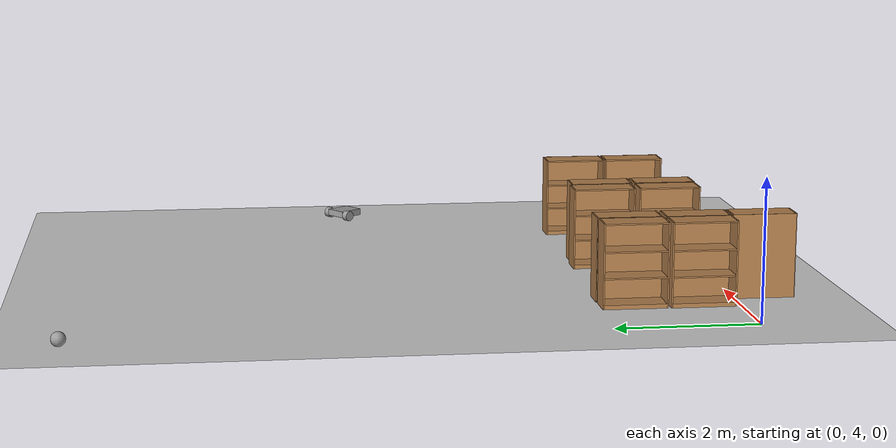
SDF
<sdf version="1.6">
 <world name="default">
  <model name="ground_plane">
   <static>1</static>
   <link name="link">
    <collision name="collision">
     <geometry><plane><normal>0 0 1</normal><size>100 100</size></plane></geometry>
     <surface>
      <contact><collide_bitmask>65535</collide_bitmask></contact>
      <friction><ode><mu>100</mu><mu2>50</mu2></ode></friction>
     </surface>
    </collision>
    <visual name="visual">
     <cast_shadows>0</cast_shadows>
     <geometry><plane><normal>0 0 1</normal><size>100 100</size></plane></geometry>
     <material>
      <script><uri>file://media/materials/scripts/gazebo.material</uri><name>Gazebo/Grey</name></script>
     </material>
    </visual>
   </link>
  </model>
  <model name="CasterWheelRobot_0">
   <link name="link_2">
    <pose>0.03 0 0.025 0 -0 0</pose>
    <inertial>
     <mass>0.0155432</mass>
     <inertia>
      <ixx>0.0001924</ixx>
      <ixy>0</ixy>
      <ixz>0</ixz>
      <iyy>0.0002189</iyy>
      <iyz>0</iyz>
      <izz>0.00038243</izz>
     </inertia>
    </inertial>
    <visual name="visual">
     <geometry><box><size>0.4 0.35 0.1</size></box></geometry>
     <material>
      <lighting>1</lighting>
      <script><uri>file://media/materials/scripts/gazebo.material</uri><name>Gazebo/Grey</name></script>
      <shader type="pixel"><normal_map>__default__</normal_map></shader>
      <ambient>0.3 0.3 0.3 1</ambient>
      <diffuse>0.7 0.7 0.7 1</diffuse>
      <specular>0.01 0.01 0.01 1</specular>
      <emissive>0 0 0 1</emissive>
     </material>
    </visual>
    <collision name="collision">
     <geometry><box><size>0.4 0.35 0.1</size></box></geometry>
     <surface>
      <friction>
       <ode><mu>1</mu><mu2>1</mu2><fdir1>0 0 0</fdir1><slip1>0</slip1><slip2>0</slip2></ode>
       <torsional>
        <coefficient>1</coefficient>
        <patch_radius>0</patch_radius>
        <surface_radius>0</surface_radius>
        <use_patch_radius>1</use_patch_radius>
        <ode><slip>0</slip></ode>
       </torsional>
      </friction>
      <bounce><restitution_coefficient>0</restitution_coefficient><threshold>1e+06</threshold></bounce>
      <contact>
       <collide_without_contact>0</collide_without_contact>
       <collide_without_contact_bitmask>1</collide_without_contact_bitmask>
       <collide_bitmask>1</collide_bitmask>
       <ode>
        <soft_cfm>0</soft_cfm>
        <soft_erp>0.2</soft_erp>
        <kp>1e+13</kp>
        <kd>1</kd>
        <max_vel>0.01</max_vel>
        <min_depth>0</min_depth>
       </ode>
       <bullet>
        <split_impulse>1</split_impulse>
        <split_impulse_penetration_threshold>-0.01</split_impulse_penetration_threshold>
        <soft_cfm>0</soft_cfm>
        <soft_erp>0.2</soft_erp>
        <kp>1e+13</kp>
        <kd>1</kd>
       </bullet>
      </contact>
     </surface>
    </collision>
   </link>
   <link name="link_3">
    <pose>-0.09 -0.225013 0.005 1.5707 -0 0</pose>
    <inertial>
     <mass>1</mass>
     <inertia><ixx>0.145833</ixx><ixy>0</ixy><ixz>0</ixz><iyy>0.145833</iyy><iyz>0</iyz><izz>0.125</izz></inertia>
    </inertial>
    <visual name="visual">
     <geometry><cylinder><radius>0.08</radius><length>0.1</length></cylinder></geometry>
     <material>
      <lighting>1</lighting>
      <script><uri>file://media/materials/scripts/gazebo.material</uri><name>Gazebo/Grey</name></script>
      <shader type="pixel"><normal_map>__default__</normal_map></shader>
      <ambient>0.3 0.3 0.3 1</ambient>
      <diffuse>0.7 0.7 0.7 1</diffuse>
      <specular>0.01 0.01 0.01 1</specular>
      <emissive>0 0 0 1</emissive>
     </material>
    </visual>
    <collision name="collision">
     <geometry><cylinder><radius>0.08</radius><length>0.1</length></cylinder></geometry>
     <surface>
      <friction>
       <ode><mu>1</mu><mu2>1</mu2><fdir1>0 0 0</fdir1><slip1>0</slip1><slip2>0</slip2></ode>
       <torsional>
        <coefficient>1</coefficient>
        <patch_radius>0</patch_radius>
        <surface_radius>0</surface_radius>
        <use_patch_radius>1</use_patch_radius>
        <ode><slip>0</slip></ode>
       </torsional>
      </friction>
      <bounce><restitution_coefficient>0</restitution_coefficient><threshold>1e+06</threshold></bounce>
      <contact>
       <collide_without_contact>0</collide_without_contact>
       <collide_without_contact_bitmask>1</collide_without_contact_bitmask>
       <collide_bitmask>1</collide_bitmask>
       <ode>
        <soft_cfm>0</soft_cfm>
        <soft_erp>0.2</soft_erp>
        <kp>1e+13</kp>
        <kd>1</kd>
        <max_vel>0.01</max_vel>
        <min_depth>0</min_depth>
       </ode>
       <bullet>
        <split_impulse>1</split_impulse>
        <split_impulse_penetration_threshold>-0.01</split_impulse_penetration_threshold>
        <soft_cfm>0</soft_cfm>
        <soft_erp>0.2</soft_erp>
        <kp>1e+13</kp>
        <kd>1</kd>
       </bullet>
      </contact>
     </surface>
    </collision>
   </link>
   <link name="link_3_clone">
    <pose>-0.09 0.225008 0.005 -1.5707 0 0</pose>
    <inertial>
     <mass>1</mass>
     <inertia><ixx>0.145833</ixx><ixy>0</ixy><ixz>0</ixz><iyy>0.145833</iyy><iyz>0</iyz><izz>0.125</izz></inertia>
    </inertial>
    <visual name="visual">
     <geometry><cylinder><radius>0.08</radius><length>0.1</length></cylinder></geometry>
     <material>
      <lighting>1</lighting>
      <script><uri>file://media/materials/scripts/gazebo.material</uri><name>Gazebo/Grey</name></script>
      <shader type="pixel"><normal_map>__default__</normal_map></shader>
      <ambient>0.3 0.3 0.3 1</ambient>
      <diffuse>0.7 0.7 0.7 1</diffuse>
      <specular>0.01 0.01 0.01 1</specular>
      <emissive>0 0 0 1</emissive>
     </material>
    </visual>
    <collision name="collision">
     <geometry><cylinder><radius>0.08</radius><length>0.1</length></cylinder></geometry>
     <surface>
      <friction>
       <ode><mu>1</mu><mu2>1</mu2><fdir1>0 0 0</fdir1><slip1>0</slip1><slip2>0</slip2></ode>
       <torsional>
        <coefficient>1</coefficient>
        <patch_radius>0</patch_radius>
        <surface_radius>0</surface_radius>
        <use_patch_radius>1</use_patch_radius>
        <ode><slip>0</slip></ode>
       </torsional>
      </friction>
      <bounce><restitution_coefficient>0</restitution_coefficient><threshold>1e+06</threshold></bounce>
      <contact>
       <collide_without_contact>0</collide_without_contact>
       <collide_without_contact_bitmask>1</collide_without_contact_bitmask>
       <collide_bitmask>1</collide_bitmask>
       <ode>
        <soft_cfm>0</soft_cfm>
        <soft_erp>0.2</soft_erp>
        <kp>1e+13</kp>
        <kd>1</kd>
        <max_vel>0.01</max_vel>
        <min_depth>0</min_depth>
       </ode>
       <bullet>
        <split_impulse>1</split_impulse>
        <split_impulse_penetration_threshold>-0.01</split_impulse_penetration_threshold>
        <soft_cfm>0</soft_cfm>
        <soft_erp>0.2</soft_erp>
        <kp>1e+13</kp>
        <kd>1</kd>
       </bullet>
      </contact>
     </surface>
    </collision>
   </link>
   <link name="link_4">
    <pose>0.15 0 -0.035 0 -0 0</pose>
    <inertial>
     <mass>0.00336129</mass>
     <inertia>
      <ixx>7.54e-06</ixx>
      <ixy>0</ixy>
      <ixz>0</ixz>
      <iyy>7.54e-06</iyy>
      <iyz>0</iyz>
      <izz>7.54e-06</izz>
     </inertia>
    </inertial>
    <visual name="visual">
     <geometry><sphere><radius>0.04</radius></sphere></geometry>
     <material>
      <lighting>1</lighting>
      <script><uri>file://media/materials/scripts/gazebo.material</uri><name>Gazebo/Grey</name></script>
      <shader type="pixel"><normal_map>__default__</normal_map></shader>
      <ambient>0.3 0.3 0.3 1</ambient>
      <diffuse>0.7 0.7 0.7 1</diffuse>
      <specular>0.01 0.01 0.01 1</specular>
      <emissive>0 0 0 1</emissive>
     </material>
    </visual>
    <collision name="collision">
     <geometry><sphere><radius>0.04</radius></sphere></geometry>
     <surface>
      <friction>
       <ode><mu>1</mu><mu2>1</mu2><fdir1>0 0 0</fdir1><slip1>0</slip1><slip2>0</slip2></ode>
       <torsional>
        <coefficient>1</coefficient>
        <patch_radius>0</patch_radius>
        <surface_radius>0</surface_radius>
        <use_patch_radius>1</use_patch_radius>
        <ode><slip>0</slip></ode>
       </torsional>
      </friction>
      <bounce><restitution_coefficient>0</restitution_coefficient><threshold>1e+06</threshold></bounce>
      <contact>
       <collide_without_contact>0</collide_without_contact>
       <collide_without_contact_bitmask>1</collide_without_contact_bitmask>
       <collide_bitmask>1</collide_bitmask>
       <ode>
        <soft_cfm>0</soft_cfm>
        <soft_erp>0.2</soft_erp>
        <kp>1e+13</kp>
        <kd>1</kd>
        <max_vel>0.01</max_vel>
        <min_depth>0</min_depth>
       </ode>
       <bullet>
        <split_impulse>1</split_impulse>
        <split_impulse_penetration_threshold>-0.01</split_impulse_penetration_threshold>
        <soft_cfm>0</soft_cfm>
        <soft_erp>0.2</soft_erp>
        <kp>1e+13</kp>
        <kd>1</kd>
       </bullet>
      </contact>
     </surface>
    </collision>
   </link>
   <joint name="link_2_JOINT_10" type="ball">
    <parent>link_2</parent>
    <child>link_4</child>
    <physics>
     <ode><limit><cfm>0</cfm><erp>0.2</erp></limit><suspension><cfm>0</cfm><erp>0.2</erp></suspension></ode>
    </physics>
   </joint>
   <joint name="link_2_JOINT_8" type="revolute">
    <parent>link_2</parent>
    <child>link_3</child>
    <axis>
     <xyz>0 0 1</xyz>
     <use_parent_model_frame>0</use_parent_model_frame>
     <limit>
      <lower>-1.79769e+308</lower>
      <upper>1.79769e+308</upper>
      <effort>-1</effort>
      <velocity>-1</velocity>
     </limit>
     <dynamics>
      <spring_reference>0</spring_reference>
      <spring_stiffness>0</spring_stiffness>
      <damping>0</damping>
     </dynamics>
    </axis>
    <physics>
     <ode><limit><cfm>0</cfm><erp>0.2</erp></limit><suspension><cfm>0</cfm><erp>0.2</erp></suspension></ode>
    </physics>
   </joint>
   <joint name="link_2_JOINT_9" type="revolute">
    <parent>link_2</parent>
    <child>link_3_clone</child>
    <axis>
     <xyz>0 0 1</xyz>
     <use_parent_model_frame>0</use_parent_model_frame>
     <limit>
      <lower>-1.79769e+308</lower>
      <upper>1.79769e+308</upper>
      <effort>-1</effort>
      <velocity>-1</velocity>
     </limit>
     <dynamics>
      <spring_reference>0</spring_reference>
      <spring_stiffness>0</spring_stiffness>
      <damping>0</damping>
     </dynamics>
    </axis>
    <physics>
     <ode><limit><cfm>0</cfm><erp>0.2</erp></limit><suspension><cfm>0</cfm><erp>0.2</erp></suspension></ode>
    </physics>
   </joint>
   <static>0</static>
   <pose>7.68747 9.03723 0.074992 5.1e-05 -5.1e-05 -0.935048</pose>
  </model>
  <model name="bookshelf_clone_98">
   <static>1</static>
   <link name="link">
    <inertial><mass>1</mass></inertial>
    <collision name="back">
     <pose>0 0.005 0.6 0 -0 0</pose>
     <geometry><box><size>0.9 0.01 1.2</size></box></geometry>
    </collision>
    <visual name="visual1">
     <pose>0 0.005 0.6 0 -0 0</pose>
     <geometry><box><size>0.9 0.01 1.2</size></box></geometry>
     <material>
      <script><uri>file://media/materials/scripts/gazebo.material</uri><name>Gazebo/Wood</name></script>
     </material>
    </visual>
    <collision name="left_side">
     <pose>0.45 -0.195 0.6 0 -0 0</pose>
     <geometry><box><size>0.02 0.4 1.2</size></box></geometry>
    </collision>
    <visual name="visual2">
     <pose>0.45 -0.195 0.6 0 -0 0</pose>
     <geometry><box><size>0.02 0.4 1.2</size></box></geometry>
     <material>
      <script><uri>file://media/materials/scripts/gazebo.material</uri><name>Gazebo/Wood</name></script>
     </material>
    </visual>
    <collision name="right_side">
     <pose>-0.45 -0.195 0.6 0 -0 0</pose>
     <geometry><box><size>0.02 0.4 1.2</size></box></geometry>
    </collision>
    <visual name="visual3">
     <pose>-0.45 -0.195 0.6 0 -0 0</pose>
     <geometry><box><size>0.02 0.4 1.2</size></box></geometry>
     <material>
      <script><uri>file://media/materials/scripts/gazebo.material</uri><name>Gazebo/Wood</name></script>
     </material>
    </visual>
    <collision name="bottom">
     <pose>0 -0.195 0.03 0 -0 0</pose>
     <geometry><box><size>0.88 0.4 0.06</size></box></geometry>
    </collision>
    <visual name="visual4">
     <pose>0 -0.195 0.03 0 -0 0</pose>
     <geometry><box><size>0.88 0.4 0.06</size></box></geometry>
     <material>
      <script><uri>file://media/materials/scripts/gazebo.material</uri><name>Gazebo/Wood</name></script>
     </material>
    </visual>
    <collision name="top">
     <pose>0 -0.195 1.19 0 -0 0</pose>
     <geometry><box><size>0.88 0.4 0.02</size></box></geometry>
    </collision>
    <visual name="visual5">
     <pose>0 -0.195 1.19 0 -0 0</pose>
     <geometry><box><size>0.88 0.4 0.02</size></box></geometry>
     <material>
      <script><uri>file://media/materials/scripts/gazebo.material</uri><name>Gazebo/Wood</name></script>
     </material>
    </visual>
    <collision name="low_shelf">
     <pose>0 -0.195 0.43 0 -0 0</pose>
     <geometry><box><size>0.88 0.4 0.02</size></box></geometry>
    </collision>
    <visual name="visual6">
     <pose>0 -0.195 0.43 0 -0 0</pose>
     <geometry><box><size>0.88 0.4 0.02</size></box></geometry>
     <material>
      <script><uri>file://media/materials/scripts/gazebo.material</uri><name>Gazebo/Wood</name></script>
     </material>
    </visual>
    <collision name="high_shelf">
     <pose>0 -0.195 0.8 0 -0 0</pose>
     <geometry><box><size>0.88 0.4 0.02</size></box></geometry>
    </collision>
    <visual name="visual7">
     <pose>0 -0.195 0.8 0 -0 0</pose>
     <geometry><box><size>0.88 0.4 0.02</size></box></geometry>
     <material>
      <script><uri>file://media/materials/scripts/gazebo.material</uri><name>Gazebo/Wood</name></script>
     </material>
    </visual>
   </link>
   <pose>6.34995 5.42884 0 0 0 -1.57004</pose>
  </model>
  <model name="bookshelf_clone_100">
   <static>1</static>
   <link name="link">
    <inertial><mass>1</mass></inertial>
    <collision name="back">
     <pose>0 0.005 0.6 0 -0 0</pose>
     <geometry><box><size>0.9 0.01 1.2</size></box></geometry>
    </collision>
    <visual name="visual1">
     <pose>0 0.005 0.6 0 -0 0</pose>
     <geometry><box><size>0.9 0.01 1.2</size></box></geometry>
     <material>
      <script><uri>file://media/materials/scripts/gazebo.material</uri><name>Gazebo/Wood</name></script>
     </material>
    </visual>
    <collision name="left_side">
     <pose>0.45 -0.195 0.6 0 -0 0</pose>
     <geometry><box><size>0.02 0.4 1.2</size></box></geometry>
    </collision>
    <visual name="visual2">
     <pose>0.45 -0.195 0.6 0 -0 0</pose>
     <geometry><box><size>0.02 0.4 1.2</size></box></geometry>
     <material>
      <script><uri>file://media/materials/scripts/gazebo.material</uri><name>Gazebo/Wood</name></script>
     </material>
    </visual>
    <collision name="right_side">
     <pose>-0.45 -0.195 0.6 0 -0 0</pose>
     <geometry><box><size>0.02 0.4 1.2</size></box></geometry>
    </collision>
    <visual name="visual3">
     <pose>-0.45 -0.195 0.6 0 -0 0</pose>
     <geometry><box><size>0.02 0.4 1.2</size></box></geometry>
     <material>
      <script><uri>file://media/materials/scripts/gazebo.material</uri><name>Gazebo/Wood</name></script>
     </material>
    </visual>
    <collision name="bottom">
     <pose>0 -0.195 0.03 0 -0 0</pose>
     <geometry><box><size>0.88 0.4 0.06</size></box></geometry>
    </collision>
    <visual name="visual4">
     <pose>0 -0.195 0.03 0 -0 0</pose>
     <geometry><box><size>0.88 0.4 0.06</size></box></geometry>
     <material>
      <script><uri>file://media/materials/scripts/gazebo.material</uri><name>Gazebo/Wood</name></script>
     </material>
    </visual>
    <collision name="top">
     <pose>0 -0.195 1.19 0 -0 0</pose>
     <geometry><box><size>0.88 0.4 0.02</size></box></geometry>
    </collision>
    <visual name="visual5">
     <pose>0 -0.195 1.19 0 -0 0</pose>
     <geometry><box><size>0.88 0.4 0.02</size></box></geometry>
     <material>
      <script><uri>file://media/materials/scripts/gazebo.material</uri><name>Gazebo/Wood</name></script>
     </material>
    </visual>
    <collision name="low_shelf">
     <pose>0 -0.195 0.43 0 -0 0</pose>
     <geometry><box><size>0.88 0.4 0.02</size></box></geometry>
    </collision>
    <visual name="visual6">
     <pose>0 -0.195 0.43 0 -0 0</pose>
     <geometry><box><size>0.88 0.4 0.02</size></box></geometry>
     <material>
      <script><uri>file://media/materials/scripts/gazebo.material</uri><name>Gazebo/Wood</name></script>
     </material>
    </visual>
    <collision name="high_shelf">
     <pose>0 -0.195 0.8 0 -0 0</pose>
     <geometry><box><size>0.88 0.4 0.02</size></box></geometry>
    </collision>
    <visual name="visual7">
     <pose>0 -0.195 0.8 0 -0 0</pose>
     <geometry><box><size>0.88 0.4 0.02</size></box></geometry>
     <material>
      <script><uri>file://media/materials/scripts/gazebo.material</uri><name>Gazebo/Wood</name></script>
     </material>
    </visual>
   </link>
   <pose>1.40973 5.49185 0 0 0 -1.57004</pose>
  </model>
  <model name="bookshelf_clone_101">
   <static>1</static>
   <link name="link">
    <inertial><mass>1</mass></inertial>
    <collision name="back">
     <pose>0 0.005 0.6 0 -0 0</pose>
     <geometry><box><size>0.9 0.01 1.2</size></box></geometry>
    </collision>
    <visual name="visual1">
     <pose>0 0.005 0.6 0 -0 0</pose>
     <geometry><box><size>0.9 0.01 1.2</size></box></geometry>
     <material>
      <script><uri>file://media/materials/scripts/gazebo.material</uri><name>Gazebo/Wood</name></script>
     </material>
    </visual>
    <collision name="left_side">
     <pose>0.45 -0.195 0.6 0 -0 0</pose>
     <geometry><box><size>0.02 0.4 1.2</size></box></geometry>
    </collision>
    <visual name="visual2">
     <pose>0.45 -0.195 0.6 0 -0 0</pose>
     <geometry><box><size>0.02 0.4 1.2</size></box></geometry>
     <material>
      <script><uri>file://media/materials/scripts/gazebo.material</uri><name>Gazebo/Wood</name></script>
     </material>
    </visual>
    <collision name="right_side">
     <pose>-0.45 -0.195 0.6 0 -0 0</pose>
     <geometry><box><size>0.02 0.4 1.2</size></box></geometry>
    </collision>
    <visual name="visual3">
     <pose>-0.45 -0.195 0.6 0 -0 0</pose>
     <geometry><box><size>0.02 0.4 1.2</size></box></geometry>
     <material>
      <script><uri>file://media/materials/scripts/gazebo.material</uri><name>Gazebo/Wood</name></script>
     </material>
    </visual>
    <collision name="bottom">
     <pose>0 -0.195 0.03 0 -0 0</pose>
     <geometry><box><size>0.88 0.4 0.06</size></box></geometry>
    </collision>
    <visual name="visual4">
     <pose>0 -0.195 0.03 0 -0 0</pose>
     <geometry><box><size>0.88 0.4 0.06</size></box></geometry>
     <material>
      <script><uri>file://media/materials/scripts/gazebo.material</uri><name>Gazebo/Wood</name></script>
     </material>
    </visual>
    <collision name="top">
     <pose>0 -0.195 1.19 0 -0 0</pose>
     <geometry><box><size>0.88 0.4 0.02</size></box></geometry>
    </collision>
    <visual name="visual5">
     <pose>0 -0.195 1.19 0 -0 0</pose>
     <geometry><box><size>0.88 0.4 0.02</size></box></geometry>
     <material>
      <script><uri>file://media/materials/scripts/gazebo.material</uri><name>Gazebo/Wood</name></script>
     </material>
    </visual>
    <collision name="low_shelf">
     <pose>0 -0.195 0.43 0 -0 0</pose>
     <geometry><box><size>0.88 0.4 0.02</size></box></geometry>
    </collision>
    <visual name="visual6">
     <pose>0 -0.195 0.43 0 -0 0</pose>
     <geometry><box><size>0.88 0.4 0.02</size></box></geometry>
     <material>
      <script><uri>file://media/materials/scripts/gazebo.material</uri><name>Gazebo/Wood</name></script>
     </material>
    </visual>
    <collision name="high_shelf">
     <pose>0 -0.195 0.8 0 -0 0</pose>
     <geometry><box><size>0.88 0.4 0.02</size></box></geometry>
    </collision>
    <visual name="visual7">
     <pose>0 -0.195 0.8 0 -0 0</pose>
     <geometry><box><size>0.88 0.4 0.02</size></box></geometry>
     <material>
      <script><uri>file://media/materials/scripts/gazebo.material</uri><name>Gazebo/Wood</name></script>
     </material>
    </visual>
   </link>
   <pose>1.39867 4.53399 0 0 0 -1.57004</pose>
  </model>
  <model name="bookshelf_clone_108">
   <static>1</static>
   <link name="link">
    <inertial><mass>1</mass></inertial>
    <collision name="back">
     <pose>0 0.005 0.6 0 -0 0</pose>
     <geometry><box><size>0.9 0.01 1.2</size></box></geometry>
    </collision>
    <visual name="visual1">
     <pose>0 0.005 0.6 0 -0 0</pose>
     <geometry><box><size>0.9 0.01 1.2</size></box></geometry>
     <material>
      <script><uri>file://media/materials/scripts/gazebo.material</uri><name>Gazebo/Wood</name></script>
     </material>
    </visual>
    <collision name="left_side">
     <pose>0.45 -0.195 0.6 0 -0 0</pose>
     <geometry><box><size>0.02 0.4 1.2</size></box></geometry>
    </collision>
    <visual name="visual2">
     <pose>0.45 -0.195 0.6 0 -0 0</pose>
     <geometry><box><size>0.02 0.4 1.2</size></box></geometry>
     <material>
      <script><uri>file://media/materials/scripts/gazebo.material</uri><name>Gazebo/Wood</name></script>
     </material>
    </visual>
    <collision name="right_side">
     <pose>-0.45 -0.195 0.6 0 -0 0</pose>
     <geometry><box><size>0.02 0.4 1.2</size></box></geometry>
    </collision>
    <visual name="visual3">
     <pose>-0.45 -0.195 0.6 0 -0 0</pose>
     <geometry><box><size>0.02 0.4 1.2</size></box></geometry>
     <material>
      <script><uri>file://media/materials/scripts/gazebo.material</uri><name>Gazebo/Wood</name></script>
     </material>
    </visual>
    <collision name="bottom">
     <pose>0 -0.195 0.03 0 -0 0</pose>
     <geometry><box><size>0.88 0.4 0.06</size></box></geometry>
    </collision>
    <visual name="visual4">
     <pose>0 -0.195 0.03 0 -0 0</pose>
     <geometry><box><size>0.88 0.4 0.06</size></box></geometry>
     <material>
      <script><uri>file://media/materials/scripts/gazebo.material</uri><name>Gazebo/Wood</name></script>
     </material>
    </visual>
    <collision name="top">
     <pose>0 -0.195 1.19 0 -0 0</pose>
     <geometry><box><size>0.88 0.4 0.02</size></box></geometry>
    </collision>
    <visual name="visual5">
     <pose>0 -0.195 1.19 0 -0 0</pose>
     <geometry><box><size>0.88 0.4 0.02</size></box></geometry>
     <material>
      <script><uri>file://media/materials/scripts/gazebo.material</uri><name>Gazebo/Wood</name></script>
     </material>
    </visual>
    <collision name="low_shelf">
     <pose>0 -0.195 0.43 0 -0 0</pose>
     <geometry><box><size>0.88 0.4 0.02</size></box></geometry>
    </collision>
    <visual name="visual6">
     <pose>0 -0.195 0.43 0 -0 0</pose>
     <geometry><box><size>0.88 0.4 0.02</size></box></geometry>
     <material>
      <script><uri>file://media/materials/scripts/gazebo.material</uri><name>Gazebo/Wood</name></script>
     </material>
    </visual>
    <collision name="high_shelf">
     <pose>0 -0.195 0.8 0 -0 0</pose>
     <geometry><box><size>0.88 0.4 0.02</size></box></geometry>
    </collision>
    <visual name="visual7">
     <pose>0 -0.195 0.8 0 -0 0</pose>
     <geometry><box><size>0.88 0.4 0.02</size></box></geometry>
     <material>
      <script><uri>file://media/materials/scripts/gazebo.material</uri><name>Gazebo/Wood</name></script>
     </material>
    </visual>
   </link>
   <pose>3.90587 4.45304 0 0 0 -1.57004</pose>
  </model>
  <model name="bookshelf_clone_115">
   <static>1</static>
   <link name="link">
    <inertial><mass>1</mass></inertial>
    <collision name="back">
     <pose>0 0.005 0.6 0 -0 0</pose>
     <geometry><box><size>0.9 0.01 1.2</size></box></geometry>
    </collision>
    <visual name="visual1">
     <pose>0 0.005 0.6 0 -0 0</pose>
     <geometry><box><size>0.9 0.01 1.2</size></box></geometry>
     <material>
      <script><uri>file://media/materials/scripts/gazebo.material</uri><name>Gazebo/Wood</name></script>
     </material>
    </visual>
    <collision name="left_side">
     <pose>0.45 -0.195 0.6 0 -0 0</pose>
     <geometry><box><size>0.02 0.4 1.2</size></box></geometry>
    </collision>
    <visual name="visual2">
     <pose>0.45 -0.195 0.6 0 -0 0</pose>
     <geometry><box><size>0.02 0.4 1.2</size></box></geometry>
     <material>
      <script><uri>file://media/materials/scripts/gazebo.material</uri><name>Gazebo/Wood</name></script>
     </material>
    </visual>
    <collision name="right_side">
     <pose>-0.45 -0.195 0.6 0 -0 0</pose>
     <geometry><box><size>0.02 0.4 1.2</size></box></geometry>
    </collision>
    <visual name="visual3">
     <pose>-0.45 -0.195 0.6 0 -0 0</pose>
     <geometry><box><size>0.02 0.4 1.2</size></box></geometry>
     <material>
      <script><uri>file://media/materials/scripts/gazebo.material</uri><name>Gazebo/Wood</name></script>
     </material>
    </visual>
    <collision name="bottom">
     <pose>0 -0.195 0.03 0 -0 0</pose>
     <geometry><box><size>0.88 0.4 0.06</size></box></geometry>
    </collision>
    <visual name="visual4">
     <pose>0 -0.195 0.03 0 -0 0</pose>
     <geometry><box><size>0.88 0.4 0.06</size></box></geometry>
     <material>
      <script><uri>file://media/materials/scripts/gazebo.material</uri><name>Gazebo/Wood</name></script>
     </material>
    </visual>
    <collision name="top">
     <pose>0 -0.195 1.19 0 -0 0</pose>
     <geometry><box><size>0.88 0.4 0.02</size></box></geometry>
    </collision>
    <visual name="visual5">
     <pose>0 -0.195 1.19 0 -0 0</pose>
     <geometry><box><size>0.88 0.4 0.02</size></box></geometry>
     <material>
      <script><uri>file://media/materials/scripts/gazebo.material</uri><name>Gazebo/Wood</name></script>
     </material>
    </visual>
    <collision name="low_shelf">
     <pose>0 -0.195 0.43 0 -0 0</pose>
     <geometry><box><size>0.88 0.4 0.02</size></box></geometry>
    </collision>
    <visual name="visual6">
     <pose>0 -0.195 0.43 0 -0 0</pose>
     <geometry><box><size>0.88 0.4 0.02</size></box></geometry>
     <material>
      <script><uri>file://media/materials/scripts/gazebo.material</uri><name>Gazebo/Wood</name></script>
     </material>
    </visual>
    <collision name="high_shelf">
     <pose>0 -0.195 0.8 0 -0 0</pose>
     <geometry><box><size>0.88 0.4 0.02</size></box></geometry>
    </collision>
    <visual name="visual7">
     <pose>0 -0.195 0.8 0 -0 0</pose>
     <geometry><box><size>0.88 0.4 0.02</size></box></geometry>
     <material>
      <script><uri>file://media/materials/scripts/gazebo.material</uri><name>Gazebo/Wood</name></script>
     </material>
    </visual>
   </link>
   <pose>6.351 4.48596 0 0 0 -1.57004</pose>
  </model>
  <model name="bookshelf_clone_122">
   <static>1</static>
   <link name="link">
    <inertial><mass>1</mass></inertial>
    <collision name="back">
     <pose>0 0.005 0.6 0 -0 0</pose>
     <geometry><box><size>0.9 0.01 1.2</size></box></geometry>
    </collision>
    <visual name="visual1">
     <pose>0 0.005 0.6 0 -0 0</pose>
     <geometry><box><size>0.9 0.01 1.2</size></box></geometry>
     <material>
      <script><uri>file://media/materials/scripts/gazebo.material</uri><name>Gazebo/Wood</name></script>
     </material>
    </visual>
    <collision name="left_side">
     <pose>0.45 -0.195 0.6 0 -0 0</pose>
     <geometry><box><size>0.02 0.4 1.2</size></box></geometry>
    </collision>
    <visual name="visual2">
     <pose>0.45 -0.195 0.6 0 -0 0</pose>
     <geometry><box><size>0.02 0.4 1.2</size></box></geometry>
     <material>
      <script><uri>file://media/materials/scripts/gazebo.material</uri><name>Gazebo/Wood</name></script>
     </material>
    </visual>
    <collision name="right_side">
     <pose>-0.45 -0.195 0.6 0 -0 0</pose>
     <geometry><box><size>0.02 0.4 1.2</size></box></geometry>
    </collision>
    <visual name="visual3">
     <pose>-0.45 -0.195 0.6 0 -0 0</pose>
     <geometry><box><size>0.02 0.4 1.2</size></box></geometry>
     <material>
      <script><uri>file://media/materials/scripts/gazebo.material</uri><name>Gazebo/Wood</name></script>
     </material>
    </visual>
    <collision name="bottom">
     <pose>0 -0.195 0.03 0 -0 0</pose>
     <geometry><box><size>0.88 0.4 0.06</size></box></geometry>
    </collision>
    <visual name="visual4">
     <pose>0 -0.195 0.03 0 -0 0</pose>
     <geometry><box><size>0.88 0.4 0.06</size></box></geometry>
     <material>
      <script><uri>file://media/materials/scripts/gazebo.material</uri><name>Gazebo/Wood</name></script>
     </material>
    </visual>
    <collision name="top">
     <pose>0 -0.195 1.19 0 -0 0</pose>
     <geometry><box><size>0.88 0.4 0.02</size></box></geometry>
    </collision>
    <visual name="visual5">
     <pose>0 -0.195 1.19 0 -0 0</pose>
     <geometry><box><size>0.88 0.4 0.02</size></box></geometry>
     <material>
      <script><uri>file://media/materials/scripts/gazebo.material</uri><name>Gazebo/Wood</name></script>
     </material>
    </visual>
    <collision name="low_shelf">
     <pose>0 -0.195 0.43 0 -0 0</pose>
     <geometry><box><size>0.88 0.4 0.02</size></box></geometry>
    </collision>
    <visual name="visual6">
     <pose>0 -0.195 0.43 0 -0 0</pose>
     <geometry><box><size>0.88 0.4 0.02</size></box></geometry>
     <material>
      <script><uri>file://media/materials/scripts/gazebo.material</uri><name>Gazebo/Wood</name></script>
     </material>
    </visual>
    <collision name="high_shelf">
     <pose>0 -0.195 0.8 0 -0 0</pose>
     <geometry><box><size>0.88 0.4 0.02</size></box></geometry>
    </collision>
    <visual name="visual7">
     <pose>0 -0.195 0.8 0 -0 0</pose>
     <geometry><box><size>0.88 0.4 0.02</size></box></geometry>
     <material>
      <script><uri>file://media/materials/scripts/gazebo.material</uri><name>Gazebo/Wood</name></script>
     </material>
    </visual>
   </link>
   <pose>1.4544 5.50502 0 0 -0 1.56949</pose>
  </model>
  <model name="bookshelf_clone_123">
   <static>1</static>
   <link name="link">
    <inertial><mass>1</mass></inertial>
    <collision name="back">
     <pose>0 0.005 0.6 0 -0 0</pose>
     <geometry><box><size>0.9 0.01 1.2</size></box></geometry>
    </collision>
    <visual name="visual1">
     <pose>0 0.005 0.6 0 -0 0</pose>
     <geometry><box><size>0.9 0.01 1.2</size></box></geometry>
     <material>
      <script><uri>file://media/materials/scripts/gazebo.material</uri><name>Gazebo/Wood</name></script>
     </material>
    </visual>
    <collision name="left_side">
     <pose>0.45 -0.195 0.6 0 -0 0</pose>
     <geometry><box><size>0.02 0.4 1.2</size></box></geometry>
    </collision>
    <visual name="visual2">
     <pose>0.45 -0.195 0.6 0 -0 0</pose>
     <geometry><box><size>0.02 0.4 1.2</size></box></geometry>
     <material>
      <script><uri>file://media/materials/scripts/gazebo.material</uri><name>Gazebo/Wood</name></script>
     </material>
    </visual>
    <collision name="right_side">
     <pose>-0.45 -0.195 0.6 0 -0 0</pose>
     <geometry><box><size>0.02 0.4 1.2</size></box></geometry>
    </collision>
    <visual name="visual3">
     <pose>-0.45 -0.195 0.6 0 -0 0</pose>
     <geometry><box><size>0.02 0.4 1.2</size></box></geometry>
     <material>
      <script><uri>file://media/materials/scripts/gazebo.material</uri><name>Gazebo/Wood</name></script>
     </material>
    </visual>
    <collision name="bottom">
     <pose>0 -0.195 0.03 0 -0 0</pose>
     <geometry><box><size>0.88 0.4 0.06</size></box></geometry>
    </collision>
    <visual name="visual4">
     <pose>0 -0.195 0.03 0 -0 0</pose>
     <geometry><box><size>0.88 0.4 0.06</size></box></geometry>
     <material>
      <script><uri>file://media/materials/scripts/gazebo.material</uri><name>Gazebo/Wood</name></script>
     </material>
    </visual>
    <collision name="top">
     <pose>0 -0.195 1.19 0 -0 0</pose>
     <geometry><box><size>0.88 0.4 0.02</size></box></geometry>
    </collision>
    <visual name="visual5">
     <pose>0 -0.195 1.19 0 -0 0</pose>
     <geometry><box><size>0.88 0.4 0.02</size></box></geometry>
     <material>
      <script><uri>file://media/materials/scripts/gazebo.material</uri><name>Gazebo/Wood</name></script>
     </material>
    </visual>
    <collision name="low_shelf">
     <pose>0 -0.195 0.43 0 -0 0</pose>
     <geometry><box><size>0.88 0.4 0.02</size></box></geometry>
    </collision>
    <visual name="visual6">
     <pose>0 -0.195 0.43 0 -0 0</pose>
     <geometry><box><size>0.88 0.4 0.02</size></box></geometry>
     <material>
      <script><uri>file://media/materials/scripts/gazebo.material</uri><name>Gazebo/Wood</name></script>
     </material>
    </visual>
    <collision name="high_shelf">
     <pose>0 -0.195 0.8 0 -0 0</pose>
     <geometry><box><size>0.88 0.4 0.02</size></box></geometry>
    </collision>
    <visual name="visual7">
     <pose>0 -0.195 0.8 0 -0 0</pose>
     <geometry><box><size>0.88 0.4 0.02</size></box></geometry>
     <material>
      <script><uri>file://media/materials/scripts/gazebo.material</uri><name>Gazebo/Wood</name></script>
     </material>
    </visual>
   </link>
   <pose>1.44403 4.53555 0 0 -0 1.56949</pose>
  </model>
  <model name="bookshelf_clone_124">
   <static>1</static>
   <link name="link">
    <inertial><mass>1</mass></inertial>
    <collision name="back">
     <pose>0 0.005 0.6 0 -0 0</pose>
     <geometry><box><size>0.9 0.01 1.2</size></box></geometry>
    </collision>
    <visual name="visual1">
     <pose>0 0.005 0.6 0 -0 0</pose>
     <geometry><box><size>0.9 0.01 1.2</size></box></geometry>
     <material>
      <script><uri>file://media/materials/scripts/gazebo.material</uri><name>Gazebo/Wood</name></script>
     </material>
    </visual>
    <collision name="left_side">
     <pose>0.45 -0.195 0.6 0 -0 0</pose>
     <geometry><box><size>0.02 0.4 1.2</size></box></geometry>
    </collision>
    <visual name="visual2">
     <pose>0.45 -0.195 0.6 0 -0 0</pose>
     <geometry><box><size>0.02 0.4 1.2</size></box></geometry>
     <material>
      <script><uri>file://media/materials/scripts/gazebo.material</uri><name>Gazebo/Wood</name></script>
     </material>
    </visual>
    <collision name="right_side">
     <pose>-0.45 -0.195 0.6 0 -0 0</pose>
     <geometry><box><size>0.02 0.4 1.2</size></box></geometry>
    </collision>
    <visual name="visual3">
     <pose>-0.45 -0.195 0.6 0 -0 0</pose>
     <geometry><box><size>0.02 0.4 1.2</size></box></geometry>
     <material>
      <script><uri>file://media/materials/scripts/gazebo.material</uri><name>Gazebo/Wood</name></script>
     </material>
    </visual>
    <collision name="bottom">
     <pose>0 -0.195 0.03 0 -0 0</pose>
     <geometry><box><size>0.88 0.4 0.06</size></box></geometry>
    </collision>
    <visual name="visual4">
     <pose>0 -0.195 0.03 0 -0 0</pose>
     <geometry><box><size>0.88 0.4 0.06</size></box></geometry>
     <material>
      <script><uri>file://media/materials/scripts/gazebo.material</uri><name>Gazebo/Wood</name></script>
     </material>
    </visual>
    <collision name="top">
     <pose>0 -0.195 1.19 0 -0 0</pose>
     <geometry><box><size>0.88 0.4 0.02</size></box></geometry>
    </collision>
    <visual name="visual5">
     <pose>0 -0.195 1.19 0 -0 0</pose>
     <geometry><box><size>0.88 0.4 0.02</size></box></geometry>
     <material>
      <script><uri>file://media/materials/scripts/gazebo.material</uri><name>Gazebo/Wood</name></script>
     </material>
    </visual>
    <collision name="low_shelf">
     <pose>0 -0.195 0.43 0 -0 0</pose>
     <geometry><box><size>0.88 0.4 0.02</size></box></geometry>
    </collision>
    <visual name="visual6">
     <pose>0 -0.195 0.43 0 -0 0</pose>
     <geometry><box><size>0.88 0.4 0.02</size></box></geometry>
     <material>
      <script><uri>file://media/materials/scripts/gazebo.material</uri><name>Gazebo/Wood</name></script>
     </material>
    </visual>
    <collision name="high_shelf">
     <pose>0 -0.195 0.8 0 -0 0</pose>
     <geometry><box><size>0.88 0.4 0.02</size></box></geometry>
    </collision>
    <visual name="visual7">
     <pose>0 -0.195 0.8 0 -0 0</pose>
     <geometry><box><size>0.88 0.4 0.02</size></box></geometry>
     <material>
      <script><uri>file://media/materials/scripts/gazebo.material</uri><name>Gazebo/Wood</name></script>
     </material>
    </visual>
   </link>
   <pose>1.43885 3.59195 0 0 -0 1.56949</pose>
  </model>
  <model name="bookshelf_clone_130">
   <static>1</static>
   <link name="link">
    <inertial><mass>1</mass></inertial>
    <collision name="back">
     <pose>0 0.005 0.6 0 -0 0</pose>
     <geometry><box><size>0.9 0.01 1.2</size></box></geometry>
    </collision>
    <visual name="visual1">
     <pose>0 0.005 0.6 0 -0 0</pose>
     <geometry><box><size>0.9 0.01 1.2</size></box></geometry>
     <material>
      <script><uri>file://media/materials/scripts/gazebo.material</uri><name>Gazebo/Wood</name></script>
     </material>
    </visual>
    <collision name="left_side">
     <pose>0.45 -0.195 0.6 0 -0 0</pose>
     <geometry><box><size>0.02 0.4 1.2</size></box></geometry>
    </collision>
    <visual name="visual2">
     <pose>0.45 -0.195 0.6 0 -0 0</pose>
     <geometry><box><size>0.02 0.4 1.2</size></box></geometry>
     <material>
      <script><uri>file://media/materials/scripts/gazebo.material</uri><name>Gazebo/Wood</name></script>
     </material>
    </visual>
    <collision name="right_side">
     <pose>-0.45 -0.195 0.6 0 -0 0</pose>
     <geometry><box><size>0.02 0.4 1.2</size></box></geometry>
    </collision>
    <visual name="visual3">
     <pose>-0.45 -0.195 0.6 0 -0 0</pose>
     <geometry><box><size>0.02 0.4 1.2</size></box></geometry>
     <material>
      <script><uri>file://media/materials/scripts/gazebo.material</uri><name>Gazebo/Wood</name></script>
     </material>
    </visual>
    <collision name="bottom">
     <pose>0 -0.195 0.03 0 -0 0</pose>
     <geometry><box><size>0.88 0.4 0.06</size></box></geometry>
    </collision>
    <visual name="visual4">
     <pose>0 -0.195 0.03 0 -0 0</pose>
     <geometry><box><size>0.88 0.4 0.06</size></box></geometry>
     <material>
      <script><uri>file://media/materials/scripts/gazebo.material</uri><name>Gazebo/Wood</name></script>
     </material>
    </visual>
    <collision name="top">
     <pose>0 -0.195 1.19 0 -0 0</pose>
     <geometry><box><size>0.88 0.4 0.02</size></box></geometry>
    </collision>
    <visual name="visual5">
     <pose>0 -0.195 1.19 0 -0 0</pose>
     <geometry><box><size>0.88 0.4 0.02</size></box></geometry>
     <material>
      <script><uri>file://media/materials/scripts/gazebo.material</uri><name>Gazebo/Wood</name></script>
     </material>
    </visual>
    <collision name="low_shelf">
     <pose>0 -0.195 0.43 0 -0 0</pose>
     <geometry><box><size>0.88 0.4 0.02</size></box></geometry>
    </collision>
    <visual name="visual6">
     <pose>0 -0.195 0.43 0 -0 0</pose>
     <geometry><box><size>0.88 0.4 0.02</size></box></geometry>
     <material>
      <script><uri>file://media/materials/scripts/gazebo.material</uri><name>Gazebo/Wood</name></script>
     </material>
    </visual>
    <collision name="high_shelf">
     <pose>0 -0.195 0.8 0 -0 0</pose>
     <geometry><box><size>0.88 0.4 0.02</size></box></geometry>
    </collision>
    <visual name="visual7">
     <pose>0 -0.195 0.8 0 -0 0</pose>
     <geometry><box><size>0.88 0.4 0.02</size></box></geometry>
     <material>
      <script><uri>file://media/materials/scripts/gazebo.material</uri><name>Gazebo/Wood</name></script>
     </material>
    </visual>
   </link>
   <pose>3.94455 5.39945 0 0 -0 1.56949</pose>
  </model>
  <model name="bookshelf_clone_131">
   <static>1</static>
   <link name="link">
    <inertial><mass>1</mass></inertial>
    <collision name="back">
     <pose>0 0.005 0.6 0 -0 0</pose>
     <geometry><box><size>0.9 0.01 1.2</size></box></geometry>
    </collision>
    <visual name="visual1">
     <pose>0 0.005 0.6 0 -0 0</pose>
     <geometry><box><size>0.9 0.01 1.2</size></box></geometry>
     <material>
      <script><uri>file://media/materials/scripts/gazebo.material</uri><name>Gazebo/Wood</name></script>
     </material>
    </visual>
    <collision name="left_side">
     <pose>0.45 -0.195 0.6 0 -0 0</pose>
     <geometry><box><size>0.02 0.4 1.2</size></box></geometry>
    </collision>
    <visual name="visual2">
     <pose>0.45 -0.195 0.6 0 -0 0</pose>
     <geometry><box><size>0.02 0.4 1.2</size></box></geometry>
     <material>
      <script><uri>file://media/materials/scripts/gazebo.material</uri><name>Gazebo/Wood</name></script>
     </material>
    </visual>
    <collision name="right_side">
     <pose>-0.45 -0.195 0.6 0 -0 0</pose>
     <geometry><box><size>0.02 0.4 1.2</size></box></geometry>
    </collision>
    <visual name="visual3">
     <pose>-0.45 -0.195 0.6 0 -0 0</pose>
     <geometry><box><size>0.02 0.4 1.2</size></box></geometry>
     <material>
      <script><uri>file://media/materials/scripts/gazebo.material</uri><name>Gazebo/Wood</name></script>
     </material>
    </visual>
    <collision name="bottom">
     <pose>0 -0.195 0.03 0 -0 0</pose>
     <geometry><box><size>0.88 0.4 0.06</size></box></geometry>
    </collision>
    <visual name="visual4">
     <pose>0 -0.195 0.03 0 -0 0</pose>
     <geometry><box><size>0.88 0.4 0.06</size></box></geometry>
     <material>
      <script><uri>file://media/materials/scripts/gazebo.material</uri><name>Gazebo/Wood</name></script>
     </material>
    </visual>
    <collision name="top">
     <pose>0 -0.195 1.19 0 -0 0</pose>
     <geometry><box><size>0.88 0.4 0.02</size></box></geometry>
    </collision>
    <visual name="visual5">
     <pose>0 -0.195 1.19 0 -0 0</pose>
     <geometry><box><size>0.88 0.4 0.02</size></box></geometry>
     <material>
      <script><uri>file://media/materials/scripts/gazebo.material</uri><name>Gazebo/Wood</name></script>
     </material>
    </visual>
    <collision name="low_shelf">
     <pose>0 -0.195 0.43 0 -0 0</pose>
     <geometry><box><size>0.88 0.4 0.02</size></box></geometry>
    </collision>
    <visual name="visual6">
     <pose>0 -0.195 0.43 0 -0 0</pose>
     <geometry><box><size>0.88 0.4 0.02</size></box></geometry>
     <material>
      <script><uri>file://media/materials/scripts/gazebo.material</uri><name>Gazebo/Wood</name></script>
     </material>
    </visual>
    <collision name="high_shelf">
     <pose>0 -0.195 0.8 0 -0 0</pose>
     <geometry><box><size>0.88 0.4 0.02</size></box></geometry>
    </collision>
    <visual name="visual7">
     <pose>0 -0.195 0.8 0 -0 0</pose>
     <geometry><box><size>0.88 0.4 0.02</size></box></geometry>
     <material>
      <script><uri>file://media/materials/scripts/gazebo.material</uri><name>Gazebo/Wood</name></script>
     </material>
    </visual>
   </link>
   <pose>3.9631 4.43955 0 0 -0 1.56949</pose>
  </model>
  <model name="bookshelf_clone_99">
   <static>1</static>
   <link name="link">
    <inertial><mass>1</mass></inertial>
    <collision name="back">
     <pose>0 0.005 0.6 0 -0 0</pose>
     <geometry><box><size>0.9 0.01 1.2</size></box></geometry>
    </collision>
    <visual name="visual1">
     <pose>0 0.005 0.6 0 -0 0</pose>
     <geometry><box><size>0.9 0.01 1.2</size></box></geometry>
     <material>
      <script><uri>file://media/materials/scripts/gazebo.material</uri><name>Gazebo/Wood</name></script>
     </material>
    </visual>
    <collision name="left_side">
     <pose>0.45 -0.195 0.6 0 -0 0</pose>
     <geometry><box><size>0.02 0.4 1.2</size></box></geometry>
    </collision>
    <visual name="visual2">
     <pose>0.45 -0.195 0.6 0 -0 0</pose>
     <geometry><box><size>0.02 0.4 1.2</size></box></geometry>
     <material>
      <script><uri>file://media/materials/scripts/gazebo.material</uri><name>Gazebo/Wood</name></script>
     </material>
    </visual>
    <collision name="right_side">
     <pose>-0.45 -0.195 0.6 0 -0 0</pose>
     <geometry><box><size>0.02 0.4 1.2</size></box></geometry>
    </collision>
    <visual name="visual3">
     <pose>-0.45 -0.195 0.6 0 -0 0</pose>
     <geometry><box><size>0.02 0.4 1.2</size></box></geometry>
     <material>
      <script><uri>file://media/materials/scripts/gazebo.material</uri><name>Gazebo/Wood</name></script>
     </material>
    </visual>
    <collision name="bottom">
     <pose>0 -0.195 0.03 0 -0 0</pose>
     <geometry><box><size>0.88 0.4 0.06</size></box></geometry>
    </collision>
    <visual name="visual4">
     <pose>0 -0.195 0.03 0 -0 0</pose>
     <geometry><box><size>0.88 0.4 0.06</size></box></geometry>
     <material>
      <script><uri>file://media/materials/scripts/gazebo.material</uri><name>Gazebo/Wood</name></script>
     </material>
    </visual>
    <collision name="top">
     <pose>0 -0.195 1.19 0 -0 0</pose>
     <geometry><box><size>0.88 0.4 0.02</size></box></geometry>
    </collision>
    <visual name="visual5">
     <pose>0 -0.195 1.19 0 -0 0</pose>
     <geometry><box><size>0.88 0.4 0.02</size></box></geometry>
     <material>
      <script><uri>file://media/materials/scripts/gazebo.material</uri><name>Gazebo/Wood</name></script>
     </material>
    </visual>
    <collision name="low_shelf">
     <pose>0 -0.195 0.43 0 -0 0</pose>
     <geometry><box><size>0.88 0.4 0.02</size></box></geometry>
    </collision>
    <visual name="visual6">
     <pose>0 -0.195 0.43 0 -0 0</pose>
     <geometry><box><size>0.88 0.4 0.02</size></box></geometry>
     <material>
      <script><uri>file://media/materials/scripts/gazebo.material</uri><name>Gazebo/Wood</name></script>
     </material>
    </visual>
    <collision name="high_shelf">
     <pose>0 -0.195 0.8 0 -0 0</pose>
     <geometry><box><size>0.88 0.4 0.02</size></box></geometry>
    </collision>
    <visual name="visual7">
     <pose>0 -0.195 0.8 0 -0 0</pose>
     <geometry><box><size>0.88 0.4 0.02</size></box></geometry>
     <material>
      <script><uri>file://media/materials/scripts/gazebo.material</uri><name>Gazebo/Wood</name></script>
     </material>
    </visual>
   </link>
   <pose>3.90078 5.43709 0 0 0 -1.57936</pose>
  </model>
  <model name="my_ball">
   <link name="link_0">
    <inertial>
     <mass>1</mass>
     <inertia><ixx>0.1</ixx><ixy>0</ixy><ixz>0</ixz><iyy>0.1</iyy><iyz>0</iyz><izz>0.1</izz></inertia>
    </inertial>
    <visual name="visual">
     <geometry><sphere><radius>0.1</radius></sphere></geometry>
     <material>
      <lighting>1</lighting>
      <script><uri>file://media/materials/scripts/gazebo.material</uri><name>Gazebo/Grey</name></script>
      <shader type="pixel"><normal_map>__default__</normal_map></shader>
      <ambient>1 1 1 1</ambient>
      <diffuse>1 1 1 1</diffuse>
      <specular>1 1 1 1</specular>
      <emissive>1 1 1 1</emissive>
     </material>
    </visual>
    <collision name="collision">
     <geometry><sphere><radius>0.1</radius></sphere></geometry>
     <surface>
      <friction>
       <ode><mu>1</mu><mu2>1</mu2><fdir1>0 0 0</fdir1><slip1>0</slip1><slip2>0</slip2></ode>
       <torsional>
        <coefficient>1</coefficient>
        <patch_radius>0</patch_radius>
        <surface_radius>0</surface_radius>
        <use_patch_radius>1</use_patch_radius>
        <ode><slip>0</slip></ode>
       </torsional>
      </friction>
      <bounce><restitution_coefficient>0</restitution_coefficient><threshold>1e+06</threshold></bounce>
      <contact>
       <collide_without_contact>0</collide_without_contact>
       <collide_without_contact_bitmask>1</collide_without_contact_bitmask>
       <collide_bitmask>1</collide_bitmask>
       <ode>
        <soft_cfm>0</soft_cfm>
        <soft_erp>0.2</soft_erp>
        <kp>1e+13</kp>
        <kd>1</kd>
        <max_vel>0.01</max_vel>
        <min_depth>0</min_depth>
       </ode>
       <bullet>
        <split_impulse>1</split_impulse>
        <split_impulse_penetration_threshold>-0.01</split_impulse_penetration_threshold>
        <soft_cfm>0</soft_cfm>
        <soft_erp>0.2</soft_erp>
        <kp>1e+13</kp>
        <kd>1</kd>
       </bullet>
      </contact>
     </surface>
    </collision>
   </link>
   <static>0</static>
   <pose>-0.031206 13.2418 0.1 0 -0 0</pose>
  </model>
 </world>
</sdf>
